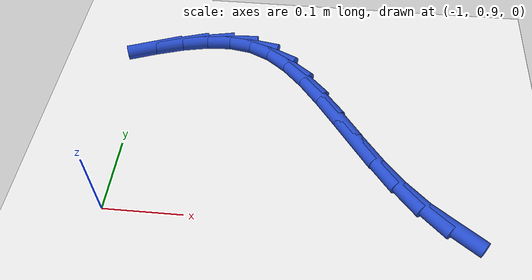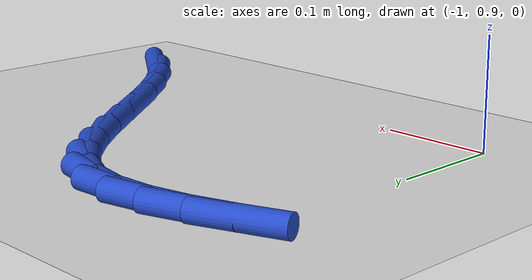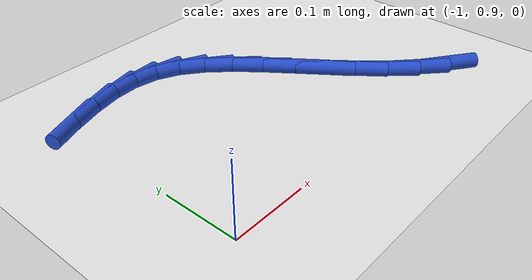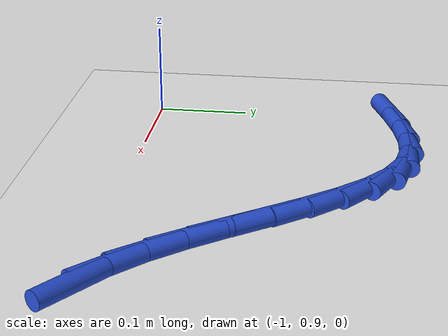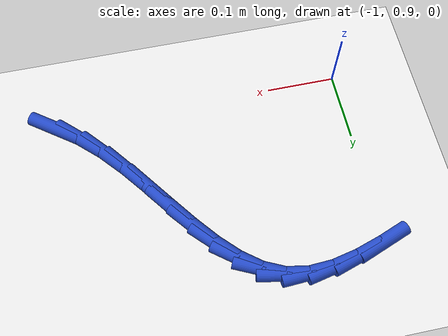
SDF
<sdf version="1.6">
 <world name="default">
  <model name="ground_plane">
   <static>1</static>
   <link name="link">
    <collision name="collision">
     <geometry><plane><normal>0 0 1</normal><size>100 100</size></plane></geometry>
     <surface><friction><ode><mu>100</mu><mu2>50</mu2></ode></friction></surface>
    </collision>
    <visual name="visual">
     <cast_shadows>0</cast_shadows>
     <geometry><plane><normal>0 0 1</normal><size>100 100</size></plane></geometry>
     <material>
      <script><uri>file://media/materials/scripts/gazebo.material</uri><name>Gazebo/WhiteGlow</name></script>
     </material>
    </visual>
   </link>
  </model>
  <model name="line">
   <link name="link_29">
    <pose>-0.5780552284878403 0.9039766816017649 0.01 0 1.57 -0.6304796986592119</pose>
    <collision name="collision">
     <geometry><cylinder><radius>0.01</radius><length>0.08</length></cylinder></geometry>
    </collision>
    <visual name="visual">
     <material>
      <script><name>Gazebo/Blue</name><uri>file://media/materials/scripts/gazebo.material</uri></script>
     </material>
     <geometry><cylinder><radius>0.01</radius><length>0.08</length></cylinder></geometry>
    </visual>
   </link>
   <link name="link_30">
    <pose>-0.6107876199701913 0.9278664076006508 0.01 0 1.57 -0.7613870550782723</pose>
    <collision name="collision">
     <geometry><cylinder><radius>0.01</radius><length>0.08</length></cylinder></geometry>
    </collision>
    <visual name="visual">
     <material>
      <script><name>Gazebo/Blue</name><uri>file://media/materials/scripts/gazebo.material</uri></script>
     </material>
     <geometry><cylinder><radius>0.01</radius><length>0.08</length></cylinder></geometry>
    </visual>
   </link>
   <link name="link_31">
    <pose>-0.6409388978767352 0.9566034401100839 0.01 0 1.57 -0.8590058676684904</pose>
    <collision name="collision">
     <geometry><cylinder><radius>0.01</radius><length>0.08</length></cylinder></geometry>
    </collision>
    <visual name="visual">
     <material>
      <script><name>Gazebo/Blue</name><uri>file://media/materials/scripts/gazebo.material</uri></script>
     </material>
     <geometry><cylinder><radius>0.01</radius><length>0.08</length></cylinder></geometry>
    </visual>
   </link>
   <link name="link_32">
    <pose>-0.6689085603835728 0.9890265196296606 0.01 0 1.57 -0.9182802615396253</pose>
    <collision name="collision">
     <geometry><cylinder><radius>0.01</radius><length>0.08</length></cylinder></geometry>
    </collision>
    <visual name="visual">
     <material>
      <script><name>Gazebo/Blue</name><uri>file://media/materials/scripts/gazebo.material</uri></script>
     </material>
     <geometry><cylinder><radius>0.01</radius><length>0.08</length></cylinder></geometry>
    </visual>
   </link>
   <link name="link_33">
    <pose>-0.6952929233646922 1.023552794877033 0.01 0 1.57 -0.9437391704710368</pose>
    <collision name="collision">
     <geometry><cylinder><radius>0.01</radius><length>0.08</length></cylinder></geometry>
    </collision>
    <visual name="visual">
     <material>
      <script><name>Gazebo/Blue</name><uri>file://media/materials/scripts/gazebo.material</uri></script>
     </material>
     <geometry><cylinder><radius>0.01</radius><length>0.08</length></cylinder></geometry>
    </visual>
   </link>
   <link name="link_34">
    <pose>-0.7206883026940815 1.0585994145698525 0.01 0 1.57 -0.9364987608788192</pose>
    <collision name="collision">
     <geometry><cylinder><radius>0.01</radius><length>0.08</length></cylinder></geometry>
    </collision>
    <visual name="visual">
     <material>
      <script><name>Gazebo/Blue</name><uri>file://media/materials/scripts/gazebo.material</uri></script>
     </material>
     <geometry><cylinder><radius>0.01</radius><length>0.08</length></cylinder></geometry>
    </visual>
   </link>
   <link name="link_35">
    <pose>-0.7456910142457293 1.0925835274257716 0.01 0 1.57 -0.893427317606175</pose>
    <collision name="collision">
     <geometry><cylinder><radius>0.01</radius><length>0.08</length></cylinder></geometry>
    </collision>
    <visual name="visual">
     <material>
      <script><name>Gazebo/Blue</name><uri>file://media/materials/scripts/gazebo.material</uri></script>
     </material>
     <geometry><cylinder><radius>0.01</radius><length>0.08</length></cylinder></geometry>
    </visual>
   </link>
   <link name="link_36">
    <pose>-0.770897373893624 1.1239222821624428 0.01 0 1.57 -0.806183701249994</pose>
    <collision name="collision">
     <geometry><cylinder><radius>0.01</radius><length>0.08</length></cylinder></geometry>
    </collision>
    <visual name="visual">
     <material>
      <script><name>Gazebo/Blue</name><uri>file://media/materials/scripts/gazebo.material</uri></script>
     </material>
     <geometry><cylinder><radius>0.01</radius><length>0.08</length></cylinder></geometry>
    </visual>
   </link>
   <link name="link_37">
    <pose>-0.7969036975117537 1.1510328274975175 0.01 0 1.57 -0.6607326906664192</pose>
    <collision name="collision">
     <geometry><cylinder><radius>0.01</radius><length>0.08</length></cylinder></geometry>
    </collision>
    <visual name="visual">
     <material>
      <script><name>Gazebo/Blue</name><uri>file://media/materials/scripts/gazebo.material</uri></script>
     </material>
     <geometry><cylinder><radius>0.01</radius><length>0.08</length></cylinder></geometry>
    </visual>
   </link>
   <link name="link_38">
    <pose>-0.8243063009741065 1.172332312148648 0.01 0 1.57 -0.4418620687028044</pose>
    <collision name="collision">
     <geometry><cylinder><radius>0.01</radius><length>0.08</length></cylinder></geometry>
    </collision>
    <visual name="visual">
     <material>
      <script><name>Gazebo/Blue</name><uri>file://media/materials/scripts/gazebo.material</uri></script>
     </material>
     <geometry><cylinder><radius>0.01</radius><length>0.08</length></cylinder></geometry>
    </visual>
   </link>
   <link name="link_39">
    <pose>-0.8537014899317251 1.1862379206578577 0.01 0 1.57 -0.17140965583437082</pose>
    <collision name="collision">
     <geometry><cylinder><radius>0.01</radius><length>0.08</length></cylinder></geometry>
    </collision>
    <visual name="visual">
     <material>
      <script><name>Gazebo/Blue</name><uri>file://media/materials/scripts/gazebo.material</uri></script>
     </material>
     <geometry><cylinder><radius>0.01</radius><length>0.08</length></cylinder></geometry>
    </visual>
   </link>
   <link name="link_40">
    <pose>-0.8855202924062847 1.191746021601011 0.01 0 1.57 0.05407094459483777</pose>
    <collision name="collision">
     <geometry><cylinder><radius>0.01</radius><length>0.08</length></cylinder></geometry>
    </collision>
    <visual name="visual">
     <material>
      <script><name>Gazebo/Blue</name><uri>file://media/materials/scripts/gazebo.material</uri></script>
     </material>
     <geometry><cylinder><radius>0.01</radius><length>0.08</length></cylinder></geometry>
    </visual>
   </link>
   <link name="link_41">
    <pose>-0.9196093091463209 1.1899009978366097 0.01 0 1.57 0.21031361238165214</pose>
    <collision name="collision">
     <geometry><cylinder><radius>0.01</radius><length>0.08</length></cylinder></geometry>
    </collision>
    <visual name="visual">
     <material>
      <script><name>Gazebo/Blue</name><uri>file://media/materials/scripts/gazebo.material</uri></script>
     </material>
     <geometry><cylinder><radius>0.01</radius><length>0.08</length></cylinder></geometry>
    </visual>
   </link>
   <link name="link_42">
    <pose>-0.9556860264615896 1.1821996892299877 0.01 0 1.57 0.3089955765308184</pose>
    <collision name="collision">
     <geometry><cylinder><radius>0.01</radius><length>0.08</length></cylinder></geometry>
    </collision>
    <visual name="visual">
     <material>
      <script><name>Gazebo/Blue</name><uri>file://media/materials/scripts/gazebo.material</uri></script>
     </material>
     <geometry><cylinder><radius>0.01</radius><length>0.08</length></cylinder></geometry>
    </visual>
   </link>
   <link name="link_43">
    <pose>-0.993467930661846 1.1701389356464786 0.01 0 1.57 0.3637179073982948</pose>
    <collision name="collision">
     <geometry><cylinder><radius>0.01</radius><length>0.08</length></cylinder></geometry>
    </collision>
    <visual name="visual">
     <material>
      <script><name>Gazebo/Blue</name><uri>file://media/materials/scripts/gazebo.material</uri></script>
     </material>
     <geometry><cylinder><radius>0.01</radius><length>0.08</length></cylinder></geometry>
    </visual>
   </link>
  </model>
 </world>
</sdf>
